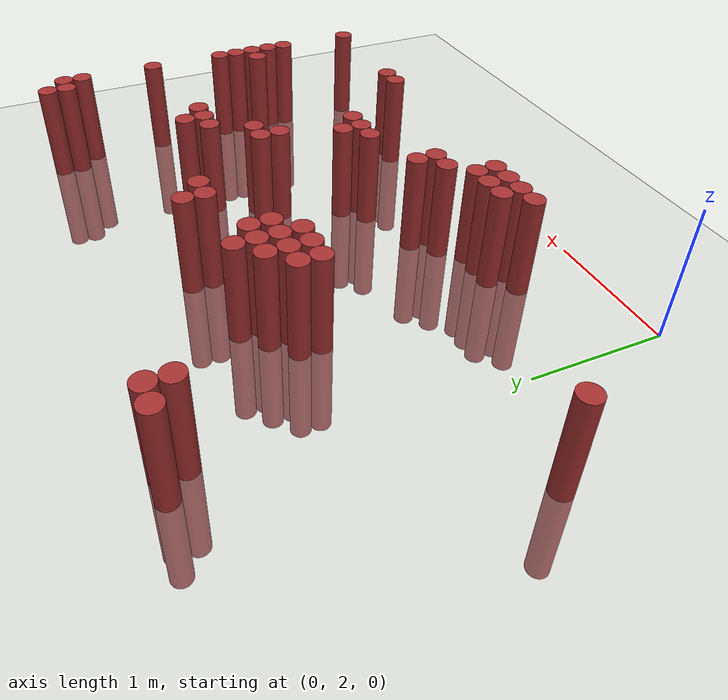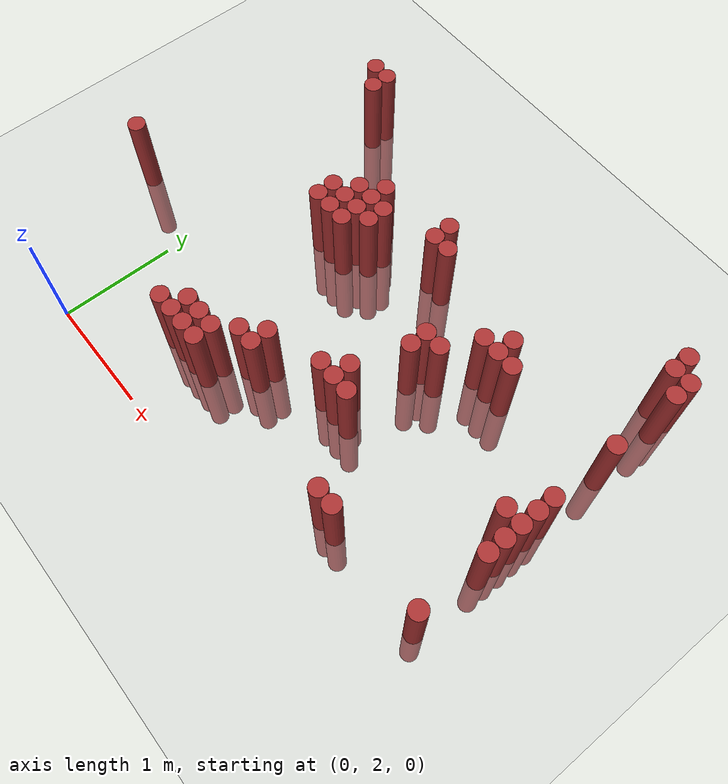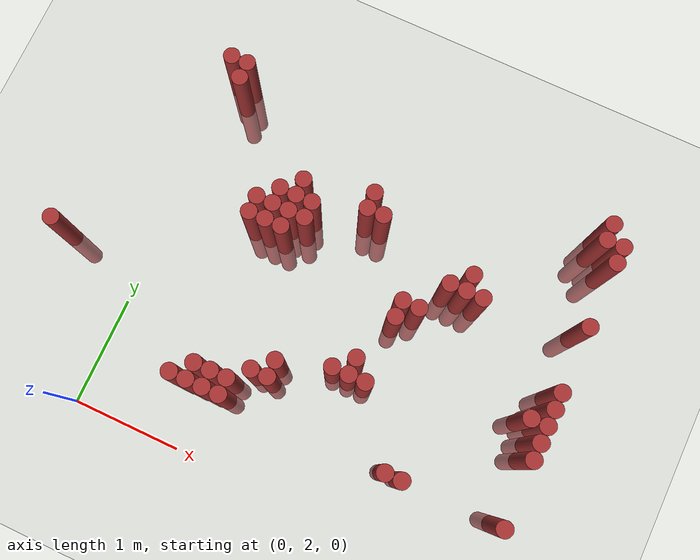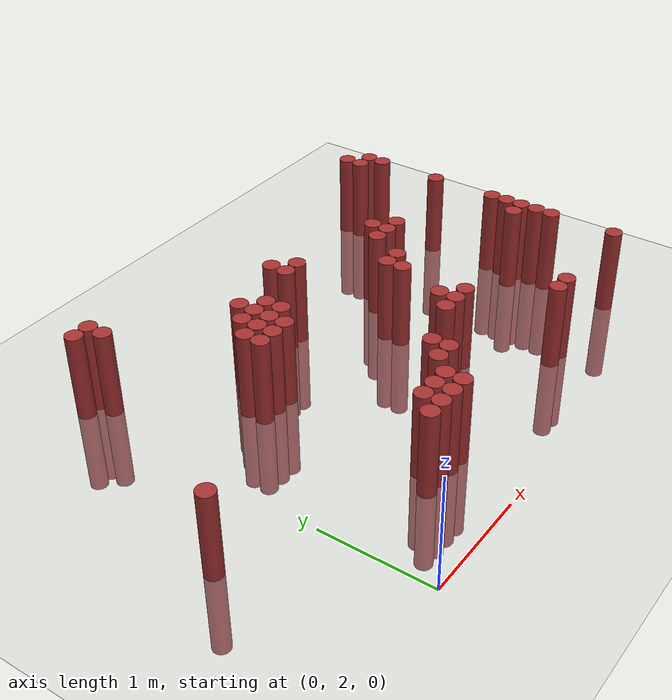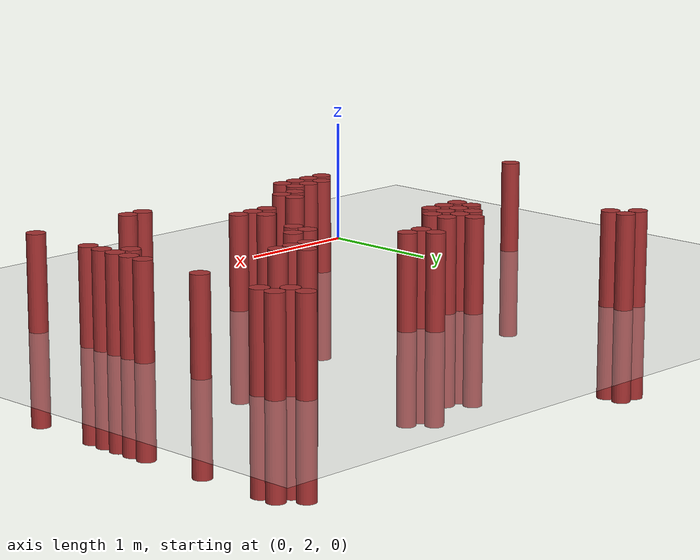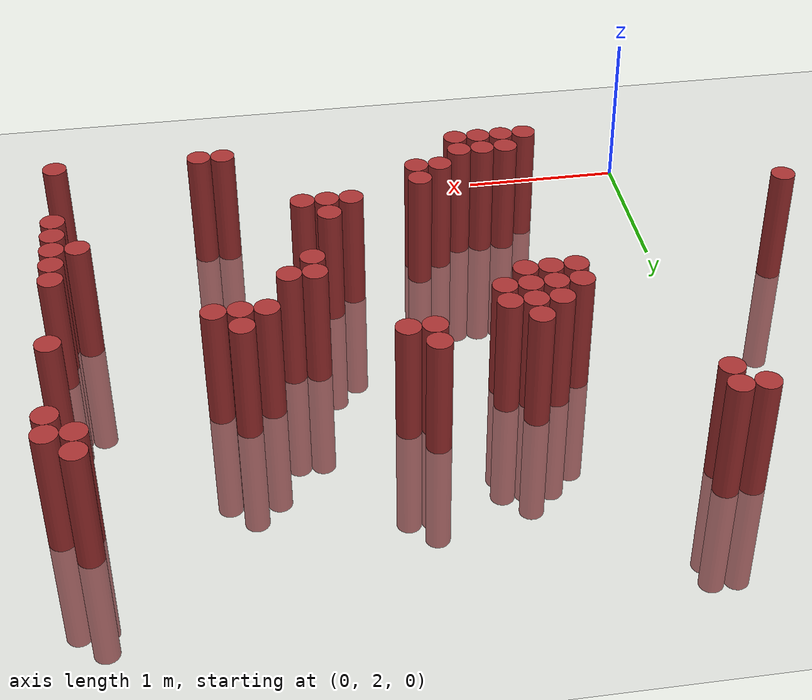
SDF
<sdf version="1.6">
 <world name="default">
  <model name="ground_plane">
   <static>1</static>
   <link name="link">
    <collision name="collision">
     <geometry><plane><normal>0 0 1</normal><size>100 100</size></plane></geometry>
     <surface><friction><ode><mu>100</mu><mu2>50</mu2></ode></friction></surface>
    </collision>
    <visual name="visual">
     <cast_shadows>0</cast_shadows>
     <geometry><plane><normal>0 0 1</normal><size>100 100</size></plane></geometry>
     <material>
      <script><uri>file://media/materials/scripts/gazebo.material</uri><name>Gazebo/Grey</name></script>
     </material>
    </visual>
   </link>
  </model>
  <model name="unit_cylinder_338">
   <static>1</static>
   <pose>-0.725000 3.325000 0.000000 0.000000 0.000000 0.000000</pose>
   <link name="link">
    <inertial>
     <mass>1</mass>
     <inertia><ixx>0.145833</ixx><ixy>0</ixy><ixz>0</ixz><iyy>0.145833</iyy><iyz>0</iyz><izz>0.125</izz></inertia>
    </inertial>
    <collision name="collision">
     <geometry><cylinder><radius>0.075000</radius><length>1.5</length></cylinder></geometry>
    </collision>
    <visual name="visual">
     <geometry><cylinder><radius>0.075000</radius><length>1.5</length></cylinder></geometry>
     <material>
      <ambient>0.648000 0.192000 0.192000 1</ambient>
      <diffuse>0.648000 0.192000 0.192000 1</diffuse>
     </material>
     <material>
      <script><name>Gazebo/Grey</name><uri>file://media/materials/scripts/gazebo.material</uri></script>
     </material>
    </visual>
   </link>
  </model>
  <model name="unit_cylinder_349">
   <static>1</static>
   <pose>0.025000 5.275000 0.000000 0.000000 0.000000 0.000000</pose>
   <link name="link">
    <inertial>
     <mass>1</mass>
     <inertia><ixx>0.145833</ixx><ixy>0</ixy><ixz>0</ixz><iyy>0.145833</iyy><iyz>0</iyz><izz>0.125</izz></inertia>
    </inertial>
    <collision name="collision">
     <geometry><cylinder><radius>0.075000</radius><length>1.5</length></cylinder></geometry>
    </collision>
    <visual name="visual">
     <geometry><cylinder><radius>0.075000</radius><length>1.5</length></cylinder></geometry>
     <material>
      <ambient>0.648000 0.192000 0.192000 1</ambient>
      <diffuse>0.648000 0.192000 0.192000 1</diffuse>
     </material>
     <material>
      <script><name>Gazebo/Grey</name><uri>file://media/materials/scripts/gazebo.material</uri></script>
     </material>
    </visual>
   </link>
  </model>
  <model name="unit_cylinder_350">
   <static>1</static>
   <pose>0.175000 5.125000 0.000000 0.000000 0.000000 0.000000</pose>
   <link name="link">
    <inertial>
     <mass>1</mass>
     <inertia><ixx>0.145833</ixx><ixy>0</ixy><ixz>0</ixz><iyy>0.145833</iyy><iyz>0</iyz><izz>0.125</izz></inertia>
    </inertial>
    <collision name="collision">
     <geometry><cylinder><radius>0.075000</radius><length>1.5</length></cylinder></geometry>
    </collision>
    <visual name="visual">
     <geometry><cylinder><radius>0.075000</radius><length>1.5</length></cylinder></geometry>
     <material>
      <ambient>0.648000 0.192000 0.192000 1</ambient>
      <diffuse>0.648000 0.192000 0.192000 1</diffuse>
     </material>
     <material>
      <script><name>Gazebo/Grey</name><uri>file://media/materials/scripts/gazebo.material</uri></script>
     </material>
    </visual>
   </link>
  </model>
  <model name="unit_cylinder_351">
   <static>1</static>
   <pose>0.175000 5.275000 0.000000 0.000000 0.000000 0.000000</pose>
   <link name="link">
    <inertial>
     <mass>1</mass>
     <inertia><ixx>0.145833</ixx><ixy>0</ixy><ixz>0</ixz><iyy>0.145833</iyy><iyz>0</iyz><izz>0.125</izz></inertia>
    </inertial>
    <collision name="collision">
     <geometry><cylinder><radius>0.075000</radius><length>1.5</length></cylinder></geometry>
    </collision>
    <visual name="visual">
     <geometry><cylinder><radius>0.075000</radius><length>1.5</length></cylinder></geometry>
     <material>
      <ambient>0.648000 0.192000 0.192000 1</ambient>
      <diffuse>0.648000 0.192000 0.192000 1</diffuse>
     </material>
     <material>
      <script><name>Gazebo/Grey</name><uri>file://media/materials/scripts/gazebo.material</uri></script>
     </material>
    </visual>
   </link>
  </model>
  <model name="unit_cylinder_355">
   <static>1</static>
   <pose>0.775000 2.575000 0.000000 0.000000 0.000000 0.000000</pose>
   <link name="link">
    <inertial>
     <mass>1</mass>
     <inertia><ixx>0.145833</ixx><ixy>0</ixy><ixz>0</ixz><iyy>0.145833</iyy><iyz>0</iyz><izz>0.125</izz></inertia>
    </inertial>
    <collision name="collision">
     <geometry><cylinder><radius>0.075000</radius><length>1.5</length></cylinder></geometry>
    </collision>
    <visual name="visual">
     <geometry><cylinder><radius>0.075000</radius><length>1.5</length></cylinder></geometry>
     <material>
      <ambient>0.648000 0.192000 0.192000 1</ambient>
      <diffuse>0.648000 0.192000 0.192000 1</diffuse>
     </material>
     <material>
      <script><name>Gazebo/Grey</name><uri>file://media/materials/scripts/gazebo.material</uri></script>
     </material>
    </visual>
   </link>
  </model>
  <model name="unit_cylinder_356">
   <static>1</static>
   <pose>0.775000 4.075000 0.000000 0.000000 0.000000 0.000000</pose>
   <link name="link">
    <inertial>
     <mass>1</mass>
     <inertia><ixx>0.145833</ixx><ixy>0</ixy><ixz>0</ixz><iyy>0.145833</iyy><iyz>0</iyz><izz>0.125</izz></inertia>
    </inertial>
    <collision name="collision">
     <geometry><cylinder><radius>0.075000</radius><length>1.5</length></cylinder></geometry>
    </collision>
    <visual name="visual">
     <geometry><cylinder><radius>0.075000</radius><length>1.5</length></cylinder></geometry>
     <material>
      <ambient>0.648000 0.192000 0.192000 1</ambient>
      <diffuse>0.648000 0.192000 0.192000 1</diffuse>
     </material>
     <material>
      <script><name>Gazebo/Grey</name><uri>file://media/materials/scripts/gazebo.material</uri></script>
     </material>
    </visual>
   </link>
  </model>
  <model name="unit_cylinder_357">
   <static>1</static>
   <pose>0.775000 4.225000 0.000000 0.000000 0.000000 0.000000</pose>
   <link name="link">
    <inertial>
     <mass>1</mass>
     <inertia><ixx>0.145833</ixx><ixy>0</ixy><ixz>0</ixz><iyy>0.145833</iyy><iyz>0</iyz><izz>0.125</izz></inertia>
    </inertial>
    <collision name="collision">
     <geometry><cylinder><radius>0.075000</radius><length>1.5</length></cylinder></geometry>
    </collision>
    <visual name="visual">
     <geometry><cylinder><radius>0.075000</radius><length>1.5</length></cylinder></geometry>
     <material>
      <ambient>0.648000 0.192000 0.192000 1</ambient>
      <diffuse>0.648000 0.192000 0.192000 1</diffuse>
     </material>
     <material>
      <script><name>Gazebo/Grey</name><uri>file://media/materials/scripts/gazebo.material</uri></script>
     </material>
    </visual>
   </link>
  </model>
  <model name="unit_cylinder_358">
   <static>1</static>
   <pose>0.925000 2.575000 0.000000 0.000000 0.000000 0.000000</pose>
   <link name="link">
    <inertial>
     <mass>1</mass>
     <inertia><ixx>0.145833</ixx><ixy>0</ixy><ixz>0</ixz><iyy>0.145833</iyy><iyz>0</iyz><izz>0.125</izz></inertia>
    </inertial>
    <collision name="collision">
     <geometry><cylinder><radius>0.075000</radius><length>1.5</length></cylinder></geometry>
    </collision>
    <visual name="visual">
     <geometry><cylinder><radius>0.075000</radius><length>1.5</length></cylinder></geometry>
     <material>
      <ambient>0.648000 0.192000 0.192000 1</ambient>
      <diffuse>0.648000 0.192000 0.192000 1</diffuse>
     </material>
     <material>
      <script><name>Gazebo/Grey</name><uri>file://media/materials/scripts/gazebo.material</uri></script>
     </material>
    </visual>
   </link>
  </model>
  <model name="unit_cylinder_359">
   <static>1</static>
   <pose>0.925000 2.725000 0.000000 0.000000 0.000000 0.000000</pose>
   <link name="link">
    <inertial>
     <mass>1</mass>
     <inertia><ixx>0.145833</ixx><ixy>0</ixy><ixz>0</ixz><iyy>0.145833</iyy><iyz>0</iyz><izz>0.125</izz></inertia>
    </inertial>
    <collision name="collision">
     <geometry><cylinder><radius>0.075000</radius><length>1.5</length></cylinder></geometry>
    </collision>
    <visual name="visual">
     <geometry><cylinder><radius>0.075000</radius><length>1.5</length></cylinder></geometry>
     <material>
      <ambient>0.648000 0.192000 0.192000 1</ambient>
      <diffuse>0.648000 0.192000 0.192000 1</diffuse>
     </material>
     <material>
      <script><name>Gazebo/Grey</name><uri>file://media/materials/scripts/gazebo.material</uri></script>
     </material>
    </visual>
   </link>
  </model>
  <model name="unit_cylinder_360">
   <static>1</static>
   <pose>0.925000 4.075000 0.000000 0.000000 0.000000 0.000000</pose>
   <link name="link">
    <inertial>
     <mass>1</mass>
     <inertia><ixx>0.145833</ixx><ixy>0</ixy><ixz>0</ixz><iyy>0.145833</iyy><iyz>0</iyz><izz>0.125</izz></inertia>
    </inertial>
    <collision name="collision">
     <geometry><cylinder><radius>0.075000</radius><length>1.5</length></cylinder></geometry>
    </collision>
    <visual name="visual">
     <geometry><cylinder><radius>0.075000</radius><length>1.5</length></cylinder></geometry>
     <material>
      <ambient>0.648000 0.192000 0.192000 1</ambient>
      <diffuse>0.648000 0.192000 0.192000 1</diffuse>
     </material>
     <material>
      <script><name>Gazebo/Grey</name><uri>file://media/materials/scripts/gazebo.material</uri></script>
     </material>
    </visual>
   </link>
  </model>
  <model name="unit_cylinder_361">
   <static>1</static>
   <pose>0.925000 4.225000 0.000000 0.000000 0.000000 0.000000</pose>
   <link name="link">
    <inertial>
     <mass>1</mass>
     <inertia><ixx>0.145833</ixx><ixy>0</ixy><ixz>0</ixz><iyy>0.145833</iyy><iyz>0</iyz><izz>0.125</izz></inertia>
    </inertial>
    <collision name="collision">
     <geometry><cylinder><radius>0.075000</radius><length>1.5</length></cylinder></geometry>
    </collision>
    <visual name="visual">
     <geometry><cylinder><radius>0.075000</radius><length>1.5</length></cylinder></geometry>
     <material>
      <ambient>0.648000 0.192000 0.192000 1</ambient>
      <diffuse>0.648000 0.192000 0.192000 1</diffuse>
     </material>
     <material>
      <script><name>Gazebo/Grey</name><uri>file://media/materials/scripts/gazebo.material</uri></script>
     </material>
    </visual>
   </link>
  </model>
  <model name="unit_cylinder_362">
   <static>1</static>
   <pose>0.925000 4.375000 0.000000 0.000000 0.000000 0.000000</pose>
   <link name="link">
    <inertial>
     <mass>1</mass>
     <inertia><ixx>0.145833</ixx><ixy>0</ixy><ixz>0</ixz><iyy>0.145833</iyy><iyz>0</iyz><izz>0.125</izz></inertia>
    </inertial>
    <collision name="collision">
     <geometry><cylinder><radius>0.075000</radius><length>1.5</length></cylinder></geometry>
    </collision>
    <visual name="visual">
     <geometry><cylinder><radius>0.075000</radius><length>1.5</length></cylinder></geometry>
     <material>
      <ambient>0.648000 0.192000 0.192000 1</ambient>
      <diffuse>0.648000 0.192000 0.192000 1</diffuse>
     </material>
     <material>
      <script><name>Gazebo/Grey</name><uri>file://media/materials/scripts/gazebo.material</uri></script>
     </material>
    </visual>
   </link>
  </model>
  <model name="unit_cylinder_364">
   <static>1</static>
   <pose>1.075000 2.575000 0.000000 0.000000 0.000000 0.000000</pose>
   <link name="link">
    <inertial>
     <mass>1</mass>
     <inertia><ixx>0.145833</ixx><ixy>0</ixy><ixz>0</ixz><iyy>0.145833</iyy><iyz>0</iyz><izz>0.125</izz></inertia>
    </inertial>
    <collision name="collision">
     <geometry><cylinder><radius>0.075000</radius><length>1.5</length></cylinder></geometry>
    </collision>
    <visual name="visual">
     <geometry><cylinder><radius>0.075000</radius><length>1.5</length></cylinder></geometry>
     <material>
      <ambient>0.648000 0.192000 0.192000 1</ambient>
      <diffuse>0.648000 0.192000 0.192000 1</diffuse>
     </material>
     <material>
      <script><name>Gazebo/Grey</name><uri>file://media/materials/scripts/gazebo.material</uri></script>
     </material>
    </visual>
   </link>
  </model>
  <model name="unit_cylinder_365">
   <static>1</static>
   <pose>1.075000 2.725000 0.000000 0.000000 0.000000 0.000000</pose>
   <link name="link">
    <inertial>
     <mass>1</mass>
     <inertia><ixx>0.145833</ixx><ixy>0</ixy><ixz>0</ixz><iyy>0.145833</iyy><iyz>0</iyz><izz>0.125</izz></inertia>
    </inertial>
    <collision name="collision">
     <geometry><cylinder><radius>0.075000</radius><length>1.5</length></cylinder></geometry>
    </collision>
    <visual name="visual">
     <geometry><cylinder><radius>0.075000</radius><length>1.5</length></cylinder></geometry>
     <material>
      <ambient>0.648000 0.192000 0.192000 1</ambient>
      <diffuse>0.648000 0.192000 0.192000 1</diffuse>
     </material>
     <material>
      <script><name>Gazebo/Grey</name><uri>file://media/materials/scripts/gazebo.material</uri></script>
     </material>
    </visual>
   </link>
  </model>
  <model name="unit_cylinder_366">
   <static>1</static>
   <pose>1.075000 4.075000 0.000000 0.000000 0.000000 0.000000</pose>
   <link name="link">
    <inertial>
     <mass>1</mass>
     <inertia><ixx>0.145833</ixx><ixy>0</ixy><ixz>0</ixz><iyy>0.145833</iyy><iyz>0</iyz><izz>0.125</izz></inertia>
    </inertial>
    <collision name="collision">
     <geometry><cylinder><radius>0.075000</radius><length>1.5</length></cylinder></geometry>
    </collision>
    <visual name="visual">
     <geometry><cylinder><radius>0.075000</radius><length>1.5</length></cylinder></geometry>
     <material>
      <ambient>0.648000 0.192000 0.192000 1</ambient>
      <diffuse>0.648000 0.192000 0.192000 1</diffuse>
     </material>
     <material>
      <script><name>Gazebo/Grey</name><uri>file://media/materials/scripts/gazebo.material</uri></script>
     </material>
    </visual>
   </link>
  </model>
  <model name="unit_cylinder_367">
   <static>1</static>
   <pose>1.075000 4.225000 0.000000 0.000000 0.000000 0.000000</pose>
   <link name="link">
    <inertial>
     <mass>1</mass>
     <inertia><ixx>0.145833</ixx><ixy>0</ixy><ixz>0</ixz><iyy>0.145833</iyy><iyz>0</iyz><izz>0.125</izz></inertia>
    </inertial>
    <collision name="collision">
     <geometry><cylinder><radius>0.075000</radius><length>1.5</length></cylinder></geometry>
    </collision>
    <visual name="visual">
     <geometry><cylinder><radius>0.075000</radius><length>1.5</length></cylinder></geometry>
     <material>
      <ambient>0.648000 0.192000 0.192000 1</ambient>
      <diffuse>0.648000 0.192000 0.192000 1</diffuse>
     </material>
     <material>
      <script><name>Gazebo/Grey</name><uri>file://media/materials/scripts/gazebo.material</uri></script>
     </material>
    </visual>
   </link>
  </model>
  <model name="unit_cylinder_368">
   <static>1</static>
   <pose>1.075000 4.375000 0.000000 0.000000 0.000000 0.000000</pose>
   <link name="link">
    <inertial>
     <mass>1</mass>
     <inertia><ixx>0.145833</ixx><ixy>0</ixy><ixz>0</ixz><iyy>0.145833</iyy><iyz>0</iyz><izz>0.125</izz></inertia>
    </inertial>
    <collision name="collision">
     <geometry><cylinder><radius>0.075000</radius><length>1.5</length></cylinder></geometry>
    </collision>
    <visual name="visual">
     <geometry><cylinder><radius>0.075000</radius><length>1.5</length></cylinder></geometry>
     <material>
      <ambient>0.648000 0.192000 0.192000 1</ambient>
      <diffuse>0.648000 0.192000 0.192000 1</diffuse>
     </material>
     <material>
      <script><name>Gazebo/Grey</name><uri>file://media/materials/scripts/gazebo.material</uri></script>
     </material>
    </visual>
   </link>
  </model>
  <model name="unit_cylinder_369">
   <static>1</static>
   <pose>1.075000 4.525000 0.000000 0.000000 0.000000 0.000000</pose>
   <link name="link">
    <inertial>
     <mass>1</mass>
     <inertia><ixx>0.145833</ixx><ixy>0</ixy><ixz>0</ixz><iyy>0.145833</iyy><iyz>0</iyz><izz>0.125</izz></inertia>
    </inertial>
    <collision name="collision">
     <geometry><cylinder><radius>0.075000</radius><length>1.5</length></cylinder></geometry>
    </collision>
    <visual name="visual">
     <geometry><cylinder><radius>0.075000</radius><length>1.5</length></cylinder></geometry>
     <material>
      <ambient>0.648000 0.192000 0.192000 1</ambient>
      <diffuse>0.648000 0.192000 0.192000 1</diffuse>
     </material>
     <material>
      <script><name>Gazebo/Grey</name><uri>file://media/materials/scripts/gazebo.material</uri></script>
     </material>
    </visual>
   </link>
  </model>
  <model name="unit_cylinder_375">
   <static>1</static>
   <pose>1.225000 2.575000 0.000000 0.000000 0.000000 0.000000</pose>
   <link name="link">
    <inertial>
     <mass>1</mass>
     <inertia><ixx>0.145833</ixx><ixy>0</ixy><ixz>0</ixz><iyy>0.145833</iyy><iyz>0</iyz><izz>0.125</izz></inertia>
    </inertial>
    <collision name="collision">
     <geometry><cylinder><radius>0.075000</radius><length>1.5</length></cylinder></geometry>
    </collision>
    <visual name="visual">
     <geometry><cylinder><radius>0.075000</radius><length>1.5</length></cylinder></geometry>
     <material>
      <ambient>0.648000 0.192000 0.192000 1</ambient>
      <diffuse>0.648000 0.192000 0.192000 1</diffuse>
     </material>
     <material>
      <script><name>Gazebo/Grey</name><uri>file://media/materials/scripts/gazebo.material</uri></script>
     </material>
    </visual>
   </link>
  </model>
  <model name="unit_cylinder_376">
   <static>1</static>
   <pose>1.225000 2.725000 0.000000 0.000000 0.000000 0.000000</pose>
   <link name="link">
    <inertial>
     <mass>1</mass>
     <inertia><ixx>0.145833</ixx><ixy>0</ixy><ixz>0</ixz><iyy>0.145833</iyy><iyz>0</iyz><izz>0.125</izz></inertia>
    </inertial>
    <collision name="collision">
     <geometry><cylinder><radius>0.075000</radius><length>1.5</length></cylinder></geometry>
    </collision>
    <visual name="visual">
     <geometry><cylinder><radius>0.075000</radius><length>1.5</length></cylinder></geometry>
     <material>
      <ambient>0.648000 0.192000 0.192000 1</ambient>
      <diffuse>0.648000 0.192000 0.192000 1</diffuse>
     </material>
     <material>
      <script><name>Gazebo/Grey</name><uri>file://media/materials/scripts/gazebo.material</uri></script>
     </material>
    </visual>
   </link>
  </model>
  <model name="unit_cylinder_377">
   <static>1</static>
   <pose>1.225000 4.225000 0.000000 0.000000 0.000000 0.000000</pose>
   <link name="link">
    <inertial>
     <mass>1</mass>
     <inertia><ixx>0.145833</ixx><ixy>0</ixy><ixz>0</ixz><iyy>0.145833</iyy><iyz>0</iyz><izz>0.125</izz></inertia>
    </inertial>
    <collision name="collision">
     <geometry><cylinder><radius>0.075000</radius><length>1.5</length></cylinder></geometry>
    </collision>
    <visual name="visual">
     <geometry><cylinder><radius>0.075000</radius><length>1.5</length></cylinder></geometry>
     <material>
      <ambient>0.648000 0.192000 0.192000 1</ambient>
      <diffuse>0.648000 0.192000 0.192000 1</diffuse>
     </material>
     <material>
      <script><name>Gazebo/Grey</name><uri>file://media/materials/scripts/gazebo.material</uri></script>
     </material>
    </visual>
   </link>
  </model>
  <model name="unit_cylinder_378">
   <static>1</static>
   <pose>1.225000 4.375000 0.000000 0.000000 0.000000 0.000000</pose>
   <link name="link">
    <inertial>
     <mass>1</mass>
     <inertia><ixx>0.145833</ixx><ixy>0</ixy><ixz>0</ixz><iyy>0.145833</iyy><iyz>0</iyz><izz>0.125</izz></inertia>
    </inertial>
    <collision name="collision">
     <geometry><cylinder><radius>0.075000</radius><length>1.5</length></cylinder></geometry>
    </collision>
    <visual name="visual">
     <geometry><cylinder><radius>0.075000</radius><length>1.5</length></cylinder></geometry>
     <material>
      <ambient>0.648000 0.192000 0.192000 1</ambient>
      <diffuse>0.648000 0.192000 0.192000 1</diffuse>
     </material>
     <material>
      <script><name>Gazebo/Grey</name><uri>file://media/materials/scripts/gazebo.material</uri></script>
     </material>
    </visual>
   </link>
  </model>
  <model name="unit_cylinder_383">
   <static>1</static>
   <pose>1.375000 2.875000 0.000000 0.000000 0.000000 0.000000</pose>
   <link name="link">
    <inertial>
     <mass>1</mass>
     <inertia><ixx>0.145833</ixx><ixy>0</ixy><ixz>0</ixz><iyy>0.145833</iyy><iyz>0</iyz><izz>0.125</izz></inertia>
    </inertial>
    <collision name="collision">
     <geometry><cylinder><radius>0.075000</radius><length>1.5</length></cylinder></geometry>
    </collision>
    <visual name="visual">
     <geometry><cylinder><radius>0.075000</radius><length>1.5</length></cylinder></geometry>
     <material>
      <ambient>0.648000 0.192000 0.192000 1</ambient>
      <diffuse>0.648000 0.192000 0.192000 1</diffuse>
     </material>
     <material>
      <script><name>Gazebo/Grey</name><uri>file://media/materials/scripts/gazebo.material</uri></script>
     </material>
    </visual>
   </link>
  </model>
  <model name="unit_cylinder_386">
   <static>1</static>
   <pose>1.525000 2.875000 0.000000 0.000000 0.000000 0.000000</pose>
   <link name="link">
    <inertial>
     <mass>1</mass>
     <inertia><ixx>0.145833</ixx><ixy>0</ixy><ixz>0</ixz><iyy>0.145833</iyy><iyz>0</iyz><izz>0.125</izz></inertia>
    </inertial>
    <collision name="collision">
     <geometry><cylinder><radius>0.075000</radius><length>1.5</length></cylinder></geometry>
    </collision>
    <visual name="visual">
     <geometry><cylinder><radius>0.075000</radius><length>1.5</length></cylinder></geometry>
     <material>
      <ambient>0.648000 0.192000 0.192000 1</ambient>
      <diffuse>0.648000 0.192000 0.192000 1</diffuse>
     </material>
     <material>
      <script><name>Gazebo/Grey</name><uri>file://media/materials/scripts/gazebo.material</uri></script>
     </material>
    </visual>
   </link>
  </model>
  <model name="unit_cylinder_387">
   <static>1</static>
   <pose>1.525000 3.025000 0.000000 0.000000 0.000000 0.000000</pose>
   <link name="link">
    <inertial>
     <mass>1</mass>
     <inertia><ixx>0.145833</ixx><ixy>0</ixy><ixz>0</ixz><iyy>0.145833</iyy><iyz>0</iyz><izz>0.125</izz></inertia>
    </inertial>
    <collision name="collision">
     <geometry><cylinder><radius>0.075000</radius><length>1.5</length></cylinder></geometry>
    </collision>
    <visual name="visual">
     <geometry><cylinder><radius>0.075000</radius><length>1.5</length></cylinder></geometry>
     <material>
      <ambient>0.648000 0.192000 0.192000 1</ambient>
      <diffuse>0.648000 0.192000 0.192000 1</diffuse>
     </material>
     <material>
      <script><name>Gazebo/Grey</name><uri>file://media/materials/scripts/gazebo.material</uri></script>
     </material>
    </visual>
   </link>
  </model>
  <model name="unit_cylinder_389">
   <static>1</static>
   <pose>1.675000 4.525000 0.000000 0.000000 0.000000 0.000000</pose>
   <link name="link">
    <inertial>
     <mass>1</mass>
     <inertia><ixx>0.145833</ixx><ixy>0</ixy><ixz>0</ixz><iyy>0.145833</iyy><iyz>0</iyz><izz>0.125</izz></inertia>
    </inertial>
    <collision name="collision">
     <geometry><cylinder><radius>0.075000</radius><length>1.5</length></cylinder></geometry>
    </collision>
    <visual name="visual">
     <geometry><cylinder><radius>0.075000</radius><length>1.5</length></cylinder></geometry>
     <material>
      <ambient>0.648000 0.192000 0.192000 1</ambient>
      <diffuse>0.648000 0.192000 0.192000 1</diffuse>
     </material>
     <material>
      <script><name>Gazebo/Grey</name><uri>file://media/materials/scripts/gazebo.material</uri></script>
     </material>
    </visual>
   </link>
  </model>
  <model name="unit_cylinder_390">
   <static>1</static>
   <pose>1.675000 4.675000 0.000000 0.000000 0.000000 0.000000</pose>
   <link name="link">
    <inertial>
     <mass>1</mass>
     <inertia><ixx>0.145833</ixx><ixy>0</ixy><ixz>0</ixz><iyy>0.145833</iyy><iyz>0</iyz><izz>0.125</izz></inertia>
    </inertial>
    <collision name="collision">
     <geometry><cylinder><radius>0.075000</radius><length>1.5</length></cylinder></geometry>
    </collision>
    <visual name="visual">
     <geometry><cylinder><radius>0.075000</radius><length>1.5</length></cylinder></geometry>
     <material>
      <ambient>0.648000 0.192000 0.192000 1</ambient>
      <diffuse>0.648000 0.192000 0.192000 1</diffuse>
     </material>
     <material>
      <script><name>Gazebo/Grey</name><uri>file://media/materials/scripts/gazebo.material</uri></script>
     </material>
    </visual>
   </link>
  </model>
  <model name="unit_cylinder_395">
   <static>1</static>
   <pose>1.825000 4.525000 0.000000 0.000000 0.000000 0.000000</pose>
   <link name="link">
    <inertial>
     <mass>1</mass>
     <inertia><ixx>0.145833</ixx><ixy>0</ixy><ixz>0</ixz><iyy>0.145833</iyy><iyz>0</iyz><izz>0.125</izz></inertia>
    </inertial>
    <collision name="collision">
     <geometry><cylinder><radius>0.075000</radius><length>1.5</length></cylinder></geometry>
    </collision>
    <visual name="visual">
     <geometry><cylinder><radius>0.075000</radius><length>1.5</length></cylinder></geometry>
     <material>
      <ambient>0.648000 0.192000 0.192000 1</ambient>
      <diffuse>0.648000 0.192000 0.192000 1</diffuse>
     </material>
     <material>
      <script><name>Gazebo/Grey</name><uri>file://media/materials/scripts/gazebo.material</uri></script>
     </material>
    </visual>
   </link>
  </model>
  <model name="unit_cylinder_400">
   <static>1</static>
   <pose>1.975000 3.175000 0.000000 0.000000 0.000000 0.000000</pose>
   <link name="link">
    <inertial>
     <mass>1</mass>
     <inertia><ixx>0.145833</ixx><ixy>0</ixy><ixz>0</ixz><iyy>0.145833</iyy><iyz>0</iyz><izz>0.125</izz></inertia>
    </inertial>
    <collision name="collision">
     <geometry><cylinder><radius>0.075000</radius><length>1.5</length></cylinder></geometry>
    </collision>
    <visual name="visual">
     <geometry><cylinder><radius>0.075000</radius><length>1.5</length></cylinder></geometry>
     <material>
      <ambient>0.648000 0.192000 0.192000 1</ambient>
      <diffuse>0.648000 0.192000 0.192000 1</diffuse>
     </material>
     <material>
      <script><name>Gazebo/Grey</name><uri>file://media/materials/scripts/gazebo.material</uri></script>
     </material>
    </visual>
   </link>
  </model>
  <model name="unit_cylinder_403">
   <static>1</static>
   <pose>2.125000 3.175000 0.000000 0.000000 0.000000 0.000000</pose>
   <link name="link">
    <inertial>
     <mass>1</mass>
     <inertia><ixx>0.145833</ixx><ixy>0</ixy><ixz>0</ixz><iyy>0.145833</iyy><iyz>0</iyz><izz>0.125</izz></inertia>
    </inertial>
    <collision name="collision">
     <geometry><cylinder><radius>0.075000</radius><length>1.5</length></cylinder></geometry>
    </collision>
    <visual name="visual">
     <geometry><cylinder><radius>0.075000</radius><length>1.5</length></cylinder></geometry>
     <material>
      <ambient>0.648000 0.192000 0.192000 1</ambient>
      <diffuse>0.648000 0.192000 0.192000 1</diffuse>
     </material>
     <material>
      <script><name>Gazebo/Grey</name><uri>file://media/materials/scripts/gazebo.material</uri></script>
     </material>
    </visual>
   </link>
  </model>
  <model name="unit_cylinder_404">
   <static>1</static>
   <pose>2.125000 3.325000 0.000000 0.000000 0.000000 0.000000</pose>
   <link name="link">
    <inertial>
     <mass>1</mass>
     <inertia><ixx>0.145833</ixx><ixy>0</ixy><ixz>0</ixz><iyy>0.145833</iyy><iyz>0</iyz><izz>0.125</izz></inertia>
    </inertial>
    <collision name="collision">
     <geometry><cylinder><radius>0.075000</radius><length>1.5</length></cylinder></geometry>
    </collision>
    <visual name="visual">
     <geometry><cylinder><radius>0.075000</radius><length>1.5</length></cylinder></geometry>
     <material>
      <ambient>0.648000 0.192000 0.192000 1</ambient>
      <diffuse>0.648000 0.192000 0.192000 1</diffuse>
     </material>
     <material>
      <script><name>Gazebo/Grey</name><uri>file://media/materials/scripts/gazebo.material</uri></script>
     </material>
    </visual>
   </link>
  </model>
  <model name="unit_cylinder_405">
   <static>1</static>
   <pose>2.275000 3.175000 0.000000 0.000000 0.000000 0.000000</pose>
   <link name="link">
    <inertial>
     <mass>1</mass>
     <inertia><ixx>0.145833</ixx><ixy>0</ixy><ixz>0</ixz><iyy>0.145833</iyy><iyz>0</iyz><izz>0.125</izz></inertia>
    </inertial>
    <collision name="collision">
     <geometry><cylinder><radius>0.075000</radius><length>1.5</length></cylinder></geometry>
    </collision>
    <visual name="visual">
     <geometry><cylinder><radius>0.075000</radius><length>1.5</length></cylinder></geometry>
     <material>
      <ambient>0.648000 0.192000 0.192000 1</ambient>
      <diffuse>0.648000 0.192000 0.192000 1</diffuse>
     </material>
     <material>
      <script><name>Gazebo/Grey</name><uri>file://media/materials/scripts/gazebo.material</uri></script>
     </material>
    </visual>
   </link>
  </model>
  <model name="unit_cylinder_406">
   <static>1</static>
   <pose>2.275000 3.775000 0.000000 0.000000 0.000000 0.000000</pose>
   <link name="link">
    <inertial>
     <mass>1</mass>
     <inertia><ixx>0.145833</ixx><ixy>0</ixy><ixz>0</ixz><iyy>0.145833</iyy><iyz>0</iyz><izz>0.125</izz></inertia>
    </inertial>
    <collision name="collision">
     <geometry><cylinder><radius>0.075000</radius><length>1.5</length></cylinder></geometry>
    </collision>
    <visual name="visual">
     <geometry><cylinder><radius>0.075000</radius><length>1.5</length></cylinder></geometry>
     <material>
      <ambient>0.648000 0.192000 0.192000 1</ambient>
      <diffuse>0.648000 0.192000 0.192000 1</diffuse>
     </material>
     <material>
      <script><name>Gazebo/Grey</name><uri>file://media/materials/scripts/gazebo.material</uri></script>
     </material>
    </visual>
   </link>
  </model>
  <model name="unit_cylinder_407">
   <static>1</static>
   <pose>2.275000 3.925000 0.000000 0.000000 0.000000 0.000000</pose>
   <link name="link">
    <inertial>
     <mass>1</mass>
     <inertia><ixx>0.145833</ixx><ixy>0</ixy><ixz>0</ixz><iyy>0.145833</iyy><iyz>0</iyz><izz>0.125</izz></inertia>
    </inertial>
    <collision name="collision">
     <geometry><cylinder><radius>0.075000</radius><length>1.5</length></cylinder></geometry>
    </collision>
    <visual name="visual">
     <geometry><cylinder><radius>0.075000</radius><length>1.5</length></cylinder></geometry>
     <material>
      <ambient>0.648000 0.192000 0.192000 1</ambient>
      <diffuse>0.648000 0.192000 0.192000 1</diffuse>
     </material>
     <material>
      <script><name>Gazebo/Grey</name><uri>file://media/materials/scripts/gazebo.material</uri></script>
     </material>
    </visual>
   </link>
  </model>
  <model name="unit_cylinder_410">
   <static>1</static>
   <pose>2.425000 3.925000 0.000000 0.000000 0.000000 0.000000</pose>
   <link name="link">
    <inertial>
     <mass>1</mass>
     <inertia><ixx>0.145833</ixx><ixy>0</ixy><ixz>0</ixz><iyy>0.145833</iyy><iyz>0</iyz><izz>0.125</izz></inertia>
    </inertial>
    <collision name="collision">
     <geometry><cylinder><radius>0.075000</radius><length>1.5</length></cylinder></geometry>
    </collision>
    <visual name="visual">
     <geometry><cylinder><radius>0.075000</radius><length>1.5</length></cylinder></geometry>
     <material>
      <ambient>0.648000 0.192000 0.192000 1</ambient>
      <diffuse>0.648000 0.192000 0.192000 1</diffuse>
     </material>
     <material>
      <script><name>Gazebo/Grey</name><uri>file://media/materials/scripts/gazebo.material</uri></script>
     </material>
    </visual>
   </link>
  </model>
  <model name="unit_cylinder_416">
   <static>1</static>
   <pose>2.575000 4.225000 0.000000 0.000000 0.000000 0.000000</pose>
   <link name="link">
    <inertial>
     <mass>1</mass>
     <inertia><ixx>0.145833</ixx><ixy>0</ixy><ixz>0</ixz><iyy>0.145833</iyy><iyz>0</iyz><izz>0.125</izz></inertia>
    </inertial>
    <collision name="collision">
     <geometry><cylinder><radius>0.075000</radius><length>1.5</length></cylinder></geometry>
    </collision>
    <visual name="visual">
     <geometry><cylinder><radius>0.075000</radius><length>1.5</length></cylinder></geometry>
     <material>
      <ambient>0.648000 0.192000 0.192000 1</ambient>
      <diffuse>0.648000 0.192000 0.192000 1</diffuse>
     </material>
     <material>
      <script><name>Gazebo/Grey</name><uri>file://media/materials/scripts/gazebo.material</uri></script>
     </material>
    </visual>
   </link>
  </model>
  <model name="unit_cylinder_424">
   <static>1</static>
   <pose>2.725000 2.575000 0.000000 0.000000 0.000000 0.000000</pose>
   <link name="link">
    <inertial>
     <mass>1</mass>
     <inertia><ixx>0.145833</ixx><ixy>0</ixy><ixz>0</ixz><iyy>0.145833</iyy><iyz>0</iyz><izz>0.125</izz></inertia>
    </inertial>
    <collision name="collision">
     <geometry><cylinder><radius>0.075000</radius><length>1.5</length></cylinder></geometry>
    </collision>
    <visual name="visual">
     <geometry><cylinder><radius>0.075000</radius><length>1.5</length></cylinder></geometry>
     <material>
      <ambient>0.648000 0.192000 0.192000 1</ambient>
      <diffuse>0.648000 0.192000 0.192000 1</diffuse>
     </material>
     <material>
      <script><name>Gazebo/Grey</name><uri>file://media/materials/scripts/gazebo.material</uri></script>
     </material>
    </visual>
   </link>
  </model>
  <model name="unit_cylinder_425">
   <static>1</static>
   <pose>2.725000 4.225000 0.000000 0.000000 0.000000 0.000000</pose>
   <link name="link">
    <inertial>
     <mass>1</mass>
     <inertia><ixx>0.145833</ixx><ixy>0</ixy><ixz>0</ixz><iyy>0.145833</iyy><iyz>0</iyz><izz>0.125</izz></inertia>
    </inertial>
    <collision name="collision">
     <geometry><cylinder><radius>0.075000</radius><length>1.5</length></cylinder></geometry>
    </collision>
    <visual name="visual">
     <geometry><cylinder><radius>0.075000</radius><length>1.5</length></cylinder></geometry>
     <material>
      <ambient>0.648000 0.192000 0.192000 1</ambient>
      <diffuse>0.648000 0.192000 0.192000 1</diffuse>
     </material>
     <material>
      <script><name>Gazebo/Grey</name><uri>file://media/materials/scripts/gazebo.material</uri></script>
     </material>
    </visual>
   </link>
  </model>
  <model name="unit_cylinder_426">
   <static>1</static>
   <pose>2.725000 4.375000 0.000000 0.000000 0.000000 0.000000</pose>
   <link name="link">
    <inertial>
     <mass>1</mass>
     <inertia><ixx>0.145833</ixx><ixy>0</ixy><ixz>0</ixz><iyy>0.145833</iyy><iyz>0</iyz><izz>0.125</izz></inertia>
    </inertial>
    <collision name="collision">
     <geometry><cylinder><radius>0.075000</radius><length>1.5</length></cylinder></geometry>
    </collision>
    <visual name="visual">
     <geometry><cylinder><radius>0.075000</radius><length>1.5</length></cylinder></geometry>
     <material>
      <ambient>0.648000 0.192000 0.192000 1</ambient>
      <diffuse>0.648000 0.192000 0.192000 1</diffuse>
     </material>
     <material>
      <script><name>Gazebo/Grey</name><uri>file://media/materials/scripts/gazebo.material</uri></script>
     </material>
    </visual>
   </link>
  </model>
  <model name="unit_cylinder_434">
   <static>1</static>
   <pose>2.875000 2.575000 0.000000 0.000000 0.000000 0.000000</pose>
   <link name="link">
    <inertial>
     <mass>1</mass>
     <inertia><ixx>0.145833</ixx><ixy>0</ixy><ixz>0</ixz><iyy>0.145833</iyy><iyz>0</iyz><izz>0.125</izz></inertia>
    </inertial>
    <collision name="collision">
     <geometry><cylinder><radius>0.075000</radius><length>1.5</length></cylinder></geometry>
    </collision>
    <visual name="visual">
     <geometry><cylinder><radius>0.075000</radius><length>1.5</length></cylinder></geometry>
     <material>
      <ambient>0.648000 0.192000 0.192000 1</ambient>
      <diffuse>0.648000 0.192000 0.192000 1</diffuse>
     </material>
     <material>
      <script><name>Gazebo/Grey</name><uri>file://media/materials/scripts/gazebo.material</uri></script>
     </material>
    </visual>
   </link>
  </model>
  <model name="unit_cylinder_435">
   <static>1</static>
   <pose>2.875000 4.225000 0.000000 0.000000 0.000000 0.000000</pose>
   <link name="link">
    <inertial>
     <mass>1</mass>
     <inertia><ixx>0.145833</ixx><ixy>0</ixy><ixz>0</ixz><iyy>0.145833</iyy><iyz>0</iyz><izz>0.125</izz></inertia>
    </inertial>
    <collision name="collision">
     <geometry><cylinder><radius>0.075000</radius><length>1.5</length></cylinder></geometry>
    </collision>
    <visual name="visual">
     <geometry><cylinder><radius>0.075000</radius><length>1.5</length></cylinder></geometry>
     <material>
      <ambient>0.648000 0.192000 0.192000 1</ambient>
      <diffuse>0.648000 0.192000 0.192000 1</diffuse>
     </material>
     <material>
      <script><name>Gazebo/Grey</name><uri>file://media/materials/scripts/gazebo.material</uri></script>
     </material>
    </visual>
   </link>
  </model>
  <model name="unit_cylinder_453">
   <static>1</static>
   <pose>3.625000 3.475000 0.000000 0.000000 0.000000 0.000000</pose>
   <link name="link">
    <inertial>
     <mass>1</mass>
     <inertia><ixx>0.145833</ixx><ixy>0</ixy><ixz>0</ixz><iyy>0.145833</iyy><iyz>0</iyz><izz>0.125</izz></inertia>
    </inertial>
    <collision name="collision">
     <geometry><cylinder><radius>0.075000</radius><length>1.5</length></cylinder></geometry>
    </collision>
    <visual name="visual">
     <geometry><cylinder><radius>0.075000</radius><length>1.5</length></cylinder></geometry>
     <material>
      <ambient>0.648000 0.192000 0.192000 1</ambient>
      <diffuse>0.648000 0.192000 0.192000 1</diffuse>
     </material>
     <material>
      <script><name>Gazebo/Grey</name><uri>file://media/materials/scripts/gazebo.material</uri></script>
     </material>
    </visual>
   </link>
  </model>
  <model name="unit_cylinder_454">
   <static>1</static>
   <pose>3.625000 5.125000 0.000000 0.000000 0.000000 0.000000</pose>
   <link name="link">
    <inertial>
     <mass>1</mass>
     <inertia><ixx>0.145833</ixx><ixy>0</ixy><ixz>0</ixz><iyy>0.145833</iyy><iyz>0</iyz><izz>0.125</izz></inertia>
    </inertial>
    <collision name="collision">
     <geometry><cylinder><radius>0.075000</radius><length>1.5</length></cylinder></geometry>
    </collision>
    <visual name="visual">
     <geometry><cylinder><radius>0.075000</radius><length>1.5</length></cylinder></geometry>
     <material>
      <ambient>0.648000 0.192000 0.192000 1</ambient>
      <diffuse>0.648000 0.192000 0.192000 1</diffuse>
     </material>
     <material>
      <script><name>Gazebo/Grey</name><uri>file://media/materials/scripts/gazebo.material</uri></script>
     </material>
    </visual>
   </link>
  </model>
  <model name="unit_cylinder_455">
   <static>1</static>
   <pose>3.625000 5.275000 0.000000 0.000000 0.000000 0.000000</pose>
   <link name="link">
    <inertial>
     <mass>1</mass>
     <inertia><ixx>0.145833</ixx><ixy>0</ixy><ixz>0</ixz><iyy>0.145833</iyy><iyz>0</iyz><izz>0.125</izz></inertia>
    </inertial>
    <collision name="collision">
     <geometry><cylinder><radius>0.075000</radius><length>1.5</length></cylinder></geometry>
    </collision>
    <visual name="visual">
     <geometry><cylinder><radius>0.075000</radius><length>1.5</length></cylinder></geometry>
     <material>
      <ambient>0.648000 0.192000 0.192000 1</ambient>
      <diffuse>0.648000 0.192000 0.192000 1</diffuse>
     </material>
     <material>
      <script><name>Gazebo/Grey</name><uri>file://media/materials/scripts/gazebo.material</uri></script>
     </material>
    </visual>
   </link>
  </model>
  <model name="unit_cylinder_468">
   <static>1</static>
   <pose>3.775000 2.575000 0.000000 0.000000 0.000000 0.000000</pose>
   <link name="link">
    <inertial>
     <mass>1</mass>
     <inertia><ixx>0.145833</ixx><ixy>0</ixy><ixz>0</ixz><iyy>0.145833</iyy><iyz>0</iyz><izz>0.125</izz></inertia>
    </inertial>
    <collision name="collision">
     <geometry><cylinder><radius>0.075000</radius><length>1.5</length></cylinder></geometry>
    </collision>
    <visual name="visual">
     <geometry><cylinder><radius>0.075000</radius><length>1.5</length></cylinder></geometry>
     <material>
      <ambient>0.648000 0.192000 0.192000 1</ambient>
      <diffuse>0.648000 0.192000 0.192000 1</diffuse>
     </material>
     <material>
      <script><name>Gazebo/Grey</name><uri>file://media/materials/scripts/gazebo.material</uri></script>
     </material>
    </visual>
   </link>
  </model>
  <model name="unit_cylinder_469">
   <static>1</static>
   <pose>3.775000 3.175000 0.000000 0.000000 0.000000 0.000000</pose>
   <link name="link">
    <inertial>
     <mass>1</mass>
     <inertia><ixx>0.145833</ixx><ixy>0</ixy><ixz>0</ixz><iyy>0.145833</iyy><iyz>0</iyz><izz>0.125</izz></inertia>
    </inertial>
    <collision name="collision">
     <geometry><cylinder><radius>0.075000</radius><length>1.5</length></cylinder></geometry>
    </collision>
    <visual name="visual">
     <geometry><cylinder><radius>0.075000</radius><length>1.5</length></cylinder></geometry>
     <material>
      <ambient>0.648000 0.192000 0.192000 1</ambient>
      <diffuse>0.648000 0.192000 0.192000 1</diffuse>
     </material>
     <material>
      <script><name>Gazebo/Grey</name><uri>file://media/materials/scripts/gazebo.material</uri></script>
     </material>
    </visual>
   </link>
  </model>
  <model name="unit_cylinder_470">
   <static>1</static>
   <pose>3.775000 3.325000 0.000000 0.000000 0.000000 0.000000</pose>
   <link name="link">
    <inertial>
     <mass>1</mass>
     <inertia><ixx>0.145833</ixx><ixy>0</ixy><ixz>0</ixz><iyy>0.145833</iyy><iyz>0</iyz><izz>0.125</izz></inertia>
    </inertial>
    <collision name="collision">
     <geometry><cylinder><radius>0.075000</radius><length>1.5</length></cylinder></geometry>
    </collision>
    <visual name="visual">
     <geometry><cylinder><radius>0.075000</radius><length>1.5</length></cylinder></geometry>
     <material>
      <ambient>0.648000 0.192000 0.192000 1</ambient>
      <diffuse>0.648000 0.192000 0.192000 1</diffuse>
     </material>
     <material>
      <script><name>Gazebo/Grey</name><uri>file://media/materials/scripts/gazebo.material</uri></script>
     </material>
    </visual>
   </link>
  </model>
  <model name="unit_cylinder_471">
   <static>1</static>
   <pose>3.775000 3.475000 0.000000 0.000000 0.000000 0.000000</pose>
   <link name="link">
    <inertial>
     <mass>1</mass>
     <inertia><ixx>0.145833</ixx><ixy>0</ixy><ixz>0</ixz><iyy>0.145833</iyy><iyz>0</iyz><izz>0.125</izz></inertia>
    </inertial>
    <collision name="collision">
     <geometry><cylinder><radius>0.075000</radius><length>1.5</length></cylinder></geometry>
    </collision>
    <visual name="visual">
     <geometry><cylinder><radius>0.075000</radius><length>1.5</length></cylinder></geometry>
     <material>
      <ambient>0.648000 0.192000 0.192000 1</ambient>
      <diffuse>0.648000 0.192000 0.192000 1</diffuse>
     </material>
     <material>
      <script><name>Gazebo/Grey</name><uri>file://media/materials/scripts/gazebo.material</uri></script>
     </material>
    </visual>
   </link>
  </model>
  <model name="unit_cylinder_472">
   <static>1</static>
   <pose>3.775000 3.625000 0.000000 0.000000 0.000000 0.000000</pose>
   <link name="link">
    <inertial>
     <mass>1</mass>
     <inertia><ixx>0.145833</ixx><ixy>0</ixy><ixz>0</ixz><iyy>0.145833</iyy><iyz>0</iyz><izz>0.125</izz></inertia>
    </inertial>
    <collision name="collision">
     <geometry><cylinder><radius>0.075000</radius><length>1.5</length></cylinder></geometry>
    </collision>
    <visual name="visual">
     <geometry><cylinder><radius>0.075000</radius><length>1.5</length></cylinder></geometry>
     <material>
      <ambient>0.648000 0.192000 0.192000 1</ambient>
      <diffuse>0.648000 0.192000 0.192000 1</diffuse>
     </material>
     <material>
      <script><name>Gazebo/Grey</name><uri>file://media/materials/scripts/gazebo.material</uri></script>
     </material>
    </visual>
   </link>
  </model>
  <model name="unit_cylinder_473">
   <static>1</static>
   <pose>3.775000 3.775000 0.000000 0.000000 0.000000 0.000000</pose>
   <link name="link">
    <inertial>
     <mass>1</mass>
     <inertia><ixx>0.145833</ixx><ixy>0</ixy><ixz>0</ixz><iyy>0.145833</iyy><iyz>0</iyz><izz>0.125</izz></inertia>
    </inertial>
    <collision name="collision">
     <geometry><cylinder><radius>0.075000</radius><length>1.5</length></cylinder></geometry>
    </collision>
    <visual name="visual">
     <geometry><cylinder><radius>0.075000</radius><length>1.5</length></cylinder></geometry>
     <material>
      <ambient>0.648000 0.192000 0.192000 1</ambient>
      <diffuse>0.648000 0.192000 0.192000 1</diffuse>
     </material>
     <material>
      <script><name>Gazebo/Grey</name><uri>file://media/materials/scripts/gazebo.material</uri></script>
     </material>
    </visual>
   </link>
  </model>
  <model name="unit_cylinder_474">
   <static>1</static>
   <pose>3.775000 4.375000 0.000000 0.000000 0.000000 0.000000</pose>
   <link name="link">
    <inertial>
     <mass>1</mass>
     <inertia><ixx>0.145833</ixx><ixy>0</ixy><ixz>0</ixz><iyy>0.145833</iyy><iyz>0</iyz><izz>0.125</izz></inertia>
    </inertial>
    <collision name="collision">
     <geometry><cylinder><radius>0.075000</radius><length>1.5</length></cylinder></geometry>
    </collision>
    <visual name="visual">
     <geometry><cylinder><radius>0.075000</radius><length>1.5</length></cylinder></geometry>
     <material>
      <ambient>0.648000 0.192000 0.192000 1</ambient>
      <diffuse>0.648000 0.192000 0.192000 1</diffuse>
     </material>
     <material>
      <script><name>Gazebo/Grey</name><uri>file://media/materials/scripts/gazebo.material</uri></script>
     </material>
    </visual>
   </link>
  </model>
  <model name="unit_cylinder_475">
   <static>1</static>
   <pose>3.775000 4.975000 0.000000 0.000000 0.000000 0.000000</pose>
   <link name="link">
    <inertial>
     <mass>1</mass>
     <inertia><ixx>0.145833</ixx><ixy>0</ixy><ixz>0</ixz><iyy>0.145833</iyy><iyz>0</iyz><izz>0.125</izz></inertia>
    </inertial>
    <collision name="collision">
     <geometry><cylinder><radius>0.075000</radius><length>1.5</length></cylinder></geometry>
    </collision>
    <visual name="visual">
     <geometry><cylinder><radius>0.075000</radius><length>1.5</length></cylinder></geometry>
     <material>
      <ambient>0.648000 0.192000 0.192000 1</ambient>
      <diffuse>0.648000 0.192000 0.192000 1</diffuse>
     </material>
     <material>
      <script><name>Gazebo/Grey</name><uri>file://media/materials/scripts/gazebo.material</uri></script>
     </material>
    </visual>
   </link>
  </model>
  <model name="unit_cylinder_476">
   <static>1</static>
   <pose>3.775000 5.125000 0.000000 0.000000 0.000000 0.000000</pose>
   <link name="link">
    <inertial>
     <mass>1</mass>
     <inertia><ixx>0.145833</ixx><ixy>0</ixy><ixz>0</ixz><iyy>0.145833</iyy><iyz>0</iyz><izz>0.125</izz></inertia>
    </inertial>
    <collision name="collision">
     <geometry><cylinder><radius>0.075000</radius><length>1.5</length></cylinder></geometry>
    </collision>
    <visual name="visual">
     <geometry><cylinder><radius>0.075000</radius><length>1.5</length></cylinder></geometry>
     <material>
      <ambient>0.648000 0.192000 0.192000 1</ambient>
      <diffuse>0.648000 0.192000 0.192000 1</diffuse>
     </material>
     <material>
      <script><name>Gazebo/Grey</name><uri>file://media/materials/scripts/gazebo.material</uri></script>
     </material>
    </visual>
   </link>
  </model>
 </world>
</sdf>
